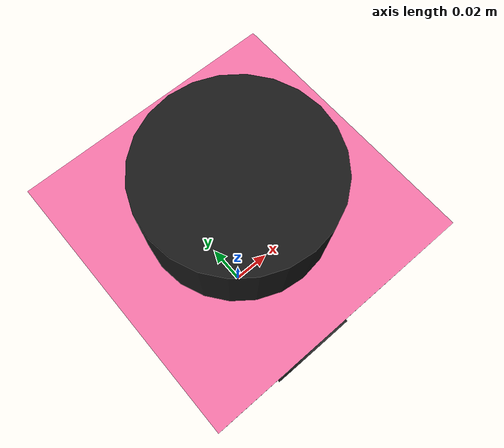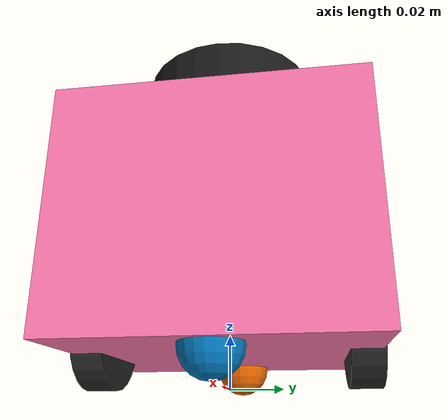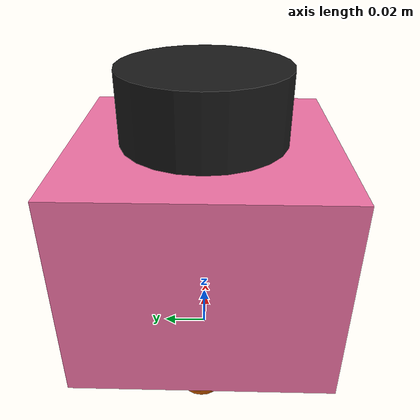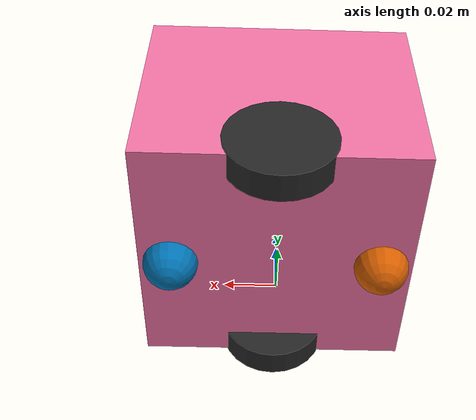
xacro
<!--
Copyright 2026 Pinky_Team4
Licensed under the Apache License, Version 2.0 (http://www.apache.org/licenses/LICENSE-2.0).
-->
<?xml version="1.0"?>
<robot name="pinky_sim" xmlns:xacro="http://www.ros.org/wiki/xacro">
  <xacro:arg name="robot_name" default="pinky1"/>
  <xacro:property name="robot_name" value="$(arg robot_name)"/>

  <xacro:property name="wheel_radius" value="0.022"/>
  <xacro:property name="wheel_width" value="0.012"/>
  <xacro:property name="wheel_separation" value="0.100"/> <!-- [m] 바퀴 중심 사이 -->
  <xacro:property name="body_size" value="0.110"/>        <!-- [m] 몸체 가로·세로 -->
  <xacro:property name="body_bottom" value="0.012"/>      <!-- [m] 바닥에서 몸체 아래면 -->
  <xacro:property name="body_top" value="0.100"/>         <!-- [m] 바닥에서 몸체 윗면 -->
  <xacro:property name="caster_radius" value="0.011"/>
  <xacro:property name="lidar_z" value="0.115"/>          <!-- [m] 라이다 광원 높이 (다른 핑키의 라이다 원통과 같은 높이) -->
  <xacro:property name="body_color" value="0.95 0.45 0.65 1"/>

  <xacro:macro name="box_inertia" params="m x y z">
    <inertia ixx="${m * (y * y + z * z) / 12}" ixy="0" ixz="0"
             iyy="${m * (x * x + z * z) / 12}" iyz="0" izz="${m * (x * x + y * y) / 12}"/>
  </xacro:macro>

  <link name="base_footprint"/>

  <link name="base_link">
    <visual>
      <origin xyz="0 0 ${(body_bottom + body_top) / 2}"/>
      <geometry><box size="${body_size} ${body_size} ${body_top - body_bottom}"/></geometry>
      <material name="pinky"><color rgba="${body_color}"/></material>
    </visual>
    <collision>
      <origin xyz="0 0 ${(body_bottom + body_top) / 2}"/>
      <geometry><box size="${body_size} ${body_size} ${body_top - body_bottom}"/></geometry>
    </collision>
    <inertial>
      <origin xyz="0 0 ${(body_bottom + body_top) / 2}"/>
      <mass value="0.8"/>
      <xacro:box_inertia m="0.8" x="${body_size}" y="${body_size}" z="${body_top - body_bottom}"/>
    </inertial>
  </link>
  <joint name="base_joint" type="fixed">
    <parent link="base_footprint"/>
    <child link="base_link"/>
  </joint>

  <xacro:macro name="wheel" params="side y">
    <link name="${side}_wheel">
      <visual>
        <origin rpy="${pi / 2} 0 0"/>
        <geometry><cylinder radius="${wheel_radius}" length="${wheel_width}"/></geometry>
        <material name="wheel"><color rgba="0.15 0.15 0.15 1"/></material>
      </visual>
      <collision>
        <origin rpy="${pi / 2} 0 0"/>
        <geometry><cylinder radius="${wheel_radius}" length="${wheel_width}"/></geometry>
      </collision>
      <inertial>
        <mass value="0.05"/>
        <inertia ixx="1e-5" ixy="0" ixz="0" iyy="1.2e-5" iyz="0" izz="1e-5"/>
      </inertial>
    </link>
    <joint name="${side}_wheel_joint" type="continuous">
      <parent link="base_link"/>
      <child link="${side}_wheel"/>
      <origin xyz="0 ${y} ${wheel_radius}"/>
      <axis xyz="0 1 0"/>
    </joint>
    <gazebo reference="${side}_wheel">
      <collision><surface><friction><ode><mu>1.0</mu><mu2>1.0</mu2></ode></friction></surface></collision>
    </gazebo>
  </xacro:macro>
  <xacro:wheel side="left" y="${wheel_separation / 2}"/>
  <xacro:wheel side="right" y="${-wheel_separation / 2}"/>

  <!-- 앞뒤 캐스터: 마찰 0 인 고정 구 (몸체가 앞뒤로 기울지 않게) -->
  <xacro:macro name="caster" params="name x">
    <link name="${name}_caster">
      <collision><geometry><sphere radius="${caster_radius}"/></geometry></collision>
      <visual><geometry><sphere radius="${caster_radius}"/></geometry></visual>
      <inertial>
        <mass value="0.01"/>
        <inertia ixx="1e-7" ixy="0" ixz="0" iyy="1e-7" iyz="0" izz="1e-7"/>
      </inertial>
    </link>
    <joint name="${name}_caster_joint" type="fixed">
      <parent link="base_link"/>
      <child link="${name}_caster"/>
      <origin xyz="${x} 0 ${caster_radius}"/>
    </joint>
    <gazebo reference="${name}_caster">
      <collision><surface><friction><ode><mu>0.0</mu><mu2>0.0</mu2></ode></friction></surface></collision>
    </gazebo>
  </xacro:macro>
  <xacro:caster name="front" x="0.042"/>
  <xacro:caster name="rear" x="-0.042"/>

  <!-- 라이다 (RPLIDAR C1 자리). 원통은 다른 핑키의 라이다에 보이도록 광원과 같은 높이에 둔다 -->
  <link name="laser">
    <visual>
      <geometry><cylinder radius="0.035" length="0.030"/></geometry>
      <material name="lidar"><color rgba="0.1 0.1 0.1 1"/></material>
    </visual>
    <collision><geometry><cylinder radius="0.035" length="0.030"/></geometry></collision>
    <inertial>
      <mass value="0.05"/>
      <inertia ixx="1e-5" ixy="0" ixz="0" iyy="1e-5" iyz="0" izz="1e-5"/>
    </inertial>
  </link>
  <joint name="laser_joint" type="fixed">
    <parent link="base_link"/>
    <child link="laser"/>
    <origin xyz="0 0 ${lidar_z}"/>
  </joint>

  <gazebo reference="laser">
    <sensor name="lidar" type="gpu_lidar">
      <topic>/model/${robot_name}/scan</topic>
      <gz_frame_id>laser</gz_frame_id>
      <update_rate>10</update_rate>
      <always_on>true</always_on>
      <visualize>false</visualize>
      <lidar>
        <scan>
          <horizontal>
            <samples>360</samples>
            <resolution>1</resolution>
            <min_angle>${-pi}</min_angle>
            <max_angle>${pi}</max_angle>
          </horizontal>
          <vertical>
            <samples>1</samples>
            <min_angle>0</min_angle>
            <max_angle>0</max_angle>
          </vertical>
        </scan>
        <!-- min 0.1 m: 자기 라이다 원통(반지름 0.035 m)은 걸러진다 -->
        <range>
          <min>0.10</min>
          <max>8.0</max>
          <resolution>0.01</resolution>
        </range>
        <noise>
          <type>gaussian</type>
          <mean>0.0</mean>
          <stddev>0.005</stddev>
        </noise>
      </lidar>
    </sensor>
  </gazebo>

  <gazebo>
    <plugin filename="gz-sim-diff-drive-system" name="gz::sim::systems::DiffDrive">
      <left_joint>left_wheel_joint</left_joint>
      <right_joint>right_wheel_joint</right_joint>
      <wheel_separation>${wheel_separation}</wheel_separation>
      <wheel_radius>${wheel_radius}</wheel_radius>
      <topic>/model/${robot_name}/cmd_vel</topic>
      <odom_topic>/model/${robot_name}/odom</odom_topic>
      <tf_topic>/model/${robot_name}/tf</tf_topic>
      <frame_id>odom</frame_id>
      <child_frame_id>base_footprint</child_frame_id>
      <odom_publish_frequency>30</odom_publish_frequency>
    </plugin>
    <plugin filename="gz-sim-joint-state-publisher-system" name="gz::sim::systems::JointStatePublisher">
      <topic>/model/${robot_name}/joint_states</topic>
    </plugin>
  </gazebo>
</robot>
